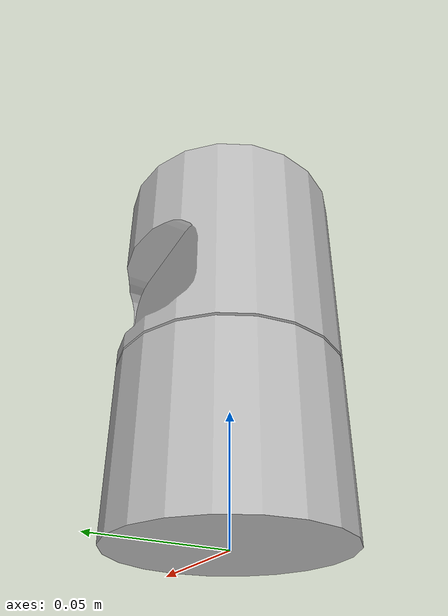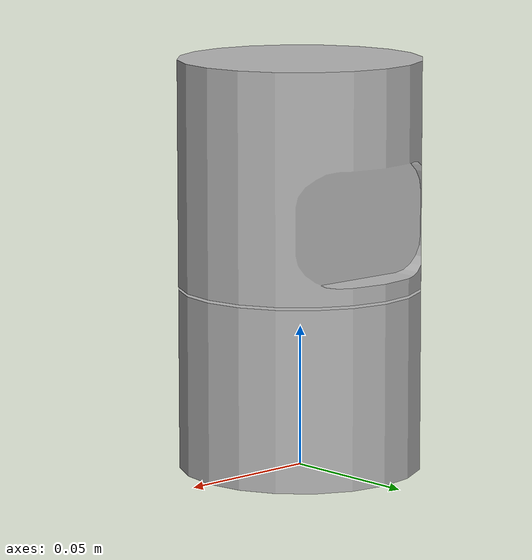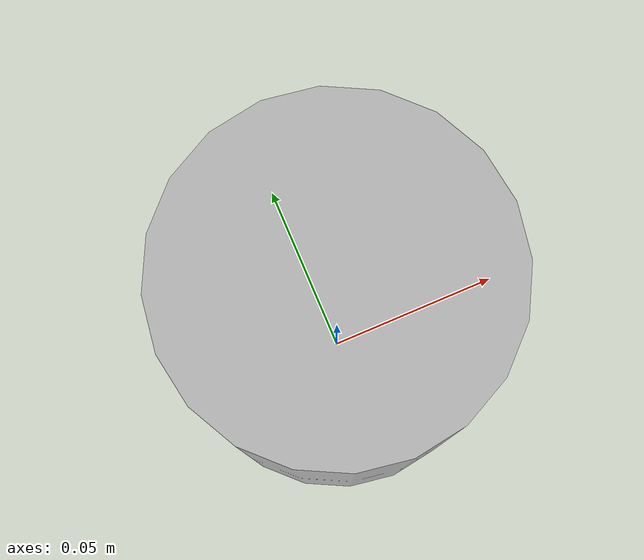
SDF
<?xml version="1.0" ?>
<sdf version="1.4">
    <model name="ray">
    <link name="link">
      <gravity>false</gravity>
      <inertial>
        <mass>0.1</mass>
      </inertial>
      <visual name="visual">
        <geometry>
          <mesh>
            <uri>model://ray/meshes/HDL32.DAE</uri>
          </mesh>
        </geometry>
      </visual>
      <sensor name="laser" type="ray">
        <pose>0.01 0 0.03 0 -0 0</pose>
        <ray>
          <scan>
            <horizontal>
              <samples>640</samples>
              <resolution>1</resolution>
              <min_angle>-2.26889</min_angle>
              <max_angle>2.268899</max_angle>
            </horizontal>
          </scan>
          <range>
            <min>0.08</min>
            <max>10</max>
            <resolution>0.01</resolution>
          </range>
          <noise>
            <type>gaussian</type>
            <mean>0.0</mean>
            <stddev>0.01</stddev>
          </noise>
        </ray>
        <plugin name="laser" filename="libRayPlugin.so" />
        <always_on>1</always_on>
        <update_rate>30</update_rate>
        <visualize>true</visualize>
      </sensor>
    </link>
    </model>
</sdf>
